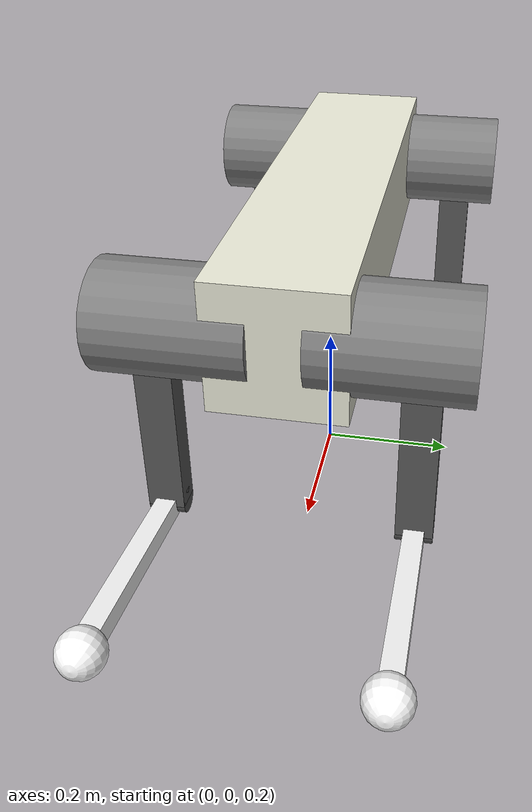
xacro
<?xml version="1.0" ?>
<robot name="jueying"
    xmlns:xacro="http://www.ros.org/wiki/xacro">

    <material name="black">
        <color rgba="0.0 0.0 0.0 1.0"/>
    </material>
    <material name="grey">
        <color rgba="0.35 0.35 0.35 1.0"/>
    </material>
    <material name="lightgrey">
        <color rgba="0.5 0.5 0.5 1.0"/>
    </material>
    <material name="silver">
        <color rgba="0.913725490196 0.913725490196 0.847058823529 1.0"/>
    </material>
    <material name="white">
        <color rgba="1.0 1.0 1.0 1.0"/>
    </material>

    <!--以下物理参数根据绝影的实际情况设置-->
    <xacro:property name="motor_torque" value="0.0"/>
    <xacro:property name="motor_vec" value="0.0"/>
    <xacro:property name="motor_damp" value="1.2"/>
    <xacro:property name="motor_fric" value="0.1"/>
    <xacro:property name="PI" value="3.14159265359"/>
    <xacro:property name="sx_l" value="0.204"/>
    <xacro:property name="sx_r" value="0.0746"/>
    <xacro:property name="sy_z" value="0.295"/>
    <xacro:property name="sy_y" value="0.051"/>
    <xacro:property name="sy_x" value="0.038"/>
    <xacro:property name="sy_l" value="0.051"/>
    <xacro:property name="sy_r" value="0.019"/>
    <xacro:property name="sk_z" value="0.3053"/>
    <xacro:property name="sk_y" value="0.028"/>
    <xacro:property name="sk_x" value="0.028"/>
    <xacro:property name="sk_r" value="0.0305"/>

    <link name="origin_link">
        <inertial>
            <origin xyz="0 0 0" rpy="0 0 0" />
            <mass value="0.000001" />
            <inertia ixx="0" ixy="0" ixz="0" iyy="0" iyz="0" izz="0" />
        </inertial>
    </link>
    <joint name="origin_baselink_joint" type="fixed">
        <origin xyz="0 0 0.6" rpy="0 0 0"/>
        <parent link="origin_link"/>
        <child link="base_link"/>
    </joint>
    <link name="base_link">
        <inertial>
            <origin xyz="0.0030652 0.0043949 0.015248" rpy="0 0 0" />
            <mass value="30.0" />
            <inertia ixx="0.15234" ixy="0.00092094" ixz="-0.0095582" iyy="0.68188" iyz="0.00091552" izz="0.64094" />
        </inertial>
        <visual>
            <origin xyz="0 0 0" rpy="0 0 0" />
            <geometry>
                <box size="0.76 0.18 0.18"/>
            </geometry>
            <material name="silver"/>
        </visual>
        <collision>
            <origin xyz="0 0 0" rpy="0 0 0" />
            <geometry>
                <box size="0.76 0.18 0.18"/>
            </geometry>
        </collision>
        <collision>
            <origin xyz="-0.38 0 0" rpy="0 0 0" />
            <geometry>
                <sphere radius="0.09"/>
            </geometry>
        </collision>
        <collision>
            <origin xyz="0.38 0 0" rpy="0 0 0" />
            <geometry>
                <sphere radius="0.09"/>
            </geometry>
        </collision>
    </link>

    <xacro:macro name="jueying_leg" params="name is_f is_l">
        <link name="${name}_HipX">
            <inertial>
                <origin xyz="0.0 ${is_l*0.038} 0.0" rpy="0 0 0" />
                <mass value="3.0" />
                <inertia ixx="0.00084975" ixy="2.5128E-05" ixz="-3.1095E-05" iyy="0.0016235" iyz="1.9684E-05" izz="0.0012084" />
            </inertial>
            <visual>
                <origin xyz="0 0 0" rpy="${PI/2.0} 0 0" />
                <geometry>
                    <cylinder length="${sx_l}" radius="${sx_r}"/>
                </geometry>
                <material name="lightgrey"/>
            </visual>
            <collision>
                <origin xyz="0 0 0" rpy="${PI/2.0} 0 0" />
                <geometry>
                    <cylinder length="${sx_l}" radius="${sx_r}"/>
                </geometry>
            </collision>
        </link>
        <joint name="${name}_HipX_joint" type="revolute">
            <origin xyz="${is_f*0.317} ${is_l*0.136} 0" rpy="0 0 0" />
            <parent link="base_link" />
            <child link="${name}_HipX" />
            <axis xyz="1 0 0" />
            <limit lower="-0.39" upper="0.39" effort="37.8" velocity="13.6" />
            <dynamics damping="${motor_damp}" friction="${motor_fric}" />
        </joint>
        <link name="${name}_HipY">
            <inertial>
                <origin xyz="0.0 ${is_l*0.026983} -0.047138" rpy="0 0 0" />
                <mass value="6.0" />
                <inertia ixx="0.0091835" ixy="-5.5596E-05" ixz="-0.00026799" iyy="0.0095232" iyz="-0.0011185" izz="0.0023439" />
            </inertial>
            <visual>
                <origin xyz="0 0 ${-sy_z/2}" rpy="0 0 0" />
                <geometry>
                    <box size="${sy_x} ${sy_y} ${sy_z}"/>
                </geometry>
                <material name="grey"/>
            </visual>
            <visual>
                <origin xyz="0 0 ${-sy_z}" rpy="${PI/2.0} 0 0" />
                <geometry>
                    <cylinder length="${sy_l}" radius="${sy_r}"/>
                </geometry>
                <material name="grey"/>
            </visual>
            <collision>
                <origin xyz="0 0 ${-sy_z/2}" rpy="0 0 0" />
                <geometry>
                    <box size="${sy_x} ${sy_y} ${sy_z}"/>
                </geometry>
            </collision>
            <collision>
                <origin xyz="0 0 ${-sy_z}" rpy="${PI/2.0} 0 0" />
                <geometry>
                    <cylinder length="${sy_l}" radius="${sy_r}"/>
                </geometry>
            </collision>
        </link>
        <joint name="${name}_HipY_joint" type="revolute">
            <origin xyz="0.0 ${is_l*0.037} 0.0" rpy="0 0 0" />
            <parent link="${name}_HipX" />
            <child link="${name}_HipY" />
            <axis xyz="0 -1 0" />
            <limit lower="-2.27" upper="0.18" effort="58.3" velocity="13.4" />
            <dynamics damping="${motor_damp}" friction="${motor_fric}" />
        </joint>
        <link name="${name}_Knee">
            <inertial>
                <origin xyz="0.0 0.0 -0.14462" rpy="0 0 0" />
                <mass value="1.0" />
                <inertia ixx="0.0048214" ixy="-9.1437E-08" ixz="8.5221E-05" iyy="0.0048402" iyz="1.3168E-06" izz="5.8603E-05" />
            </inertial>
            <visual>
                <origin xyz="0 0 ${-sk_z/2}" rpy="0 0 0" />
                <geometry>
                    <box size="${sk_x} ${sk_y} ${sk_z}"/>
                </geometry>
                <material name="white"/>
            </visual>
            <visual>
                <origin xyz="0 0 ${-sk_z}" rpy="0 0 0" />
                <geometry>
                    <sphere radius="${sk_r}"/>
                </geometry>
                <material name="white"/>
            </visual>
            <collision>
                <origin xyz="0 0 ${-sk_z/2}" rpy="0 0 0" />
                <geometry>
                    <box size="${sk_x} ${sk_y} ${sk_z}"/>
                </geometry>
            </collision>
            <collision>
                <origin xyz="0 0 ${-sk_z}" rpy="0 0 0" />
                <geometry>
                    <sphere radius="${sk_r}"/>
                </geometry>
            </collision>
        </link>
        <joint name="${name}_Knee_joint" type="revolute">
            <origin xyz="0 0 -0.3" rpy="0 0 0" />
            <parent link="${name}_HipY" />
            <child link="${name}_Knee" />
            <axis xyz="0 -1 0" />
            <limit lower="0.66" upper="2.73" effort="58.3" velocity="13.4" />
            <dynamics damping="${motor_damp}" friction="${motor_fric}" />
        </joint>
    </xacro:macro>

    <xacro:jueying_leg name="FL" is_f= "1" is_l= "1" />
    <xacro:jueying_leg name="FR" is_f= "1" is_l="-1" />
    <xacro:jueying_leg name="HL" is_f="-1" is_l= "1" />
    <xacro:jueying_leg name="HR" is_f="-1" is_l="-1" />
</robot>
